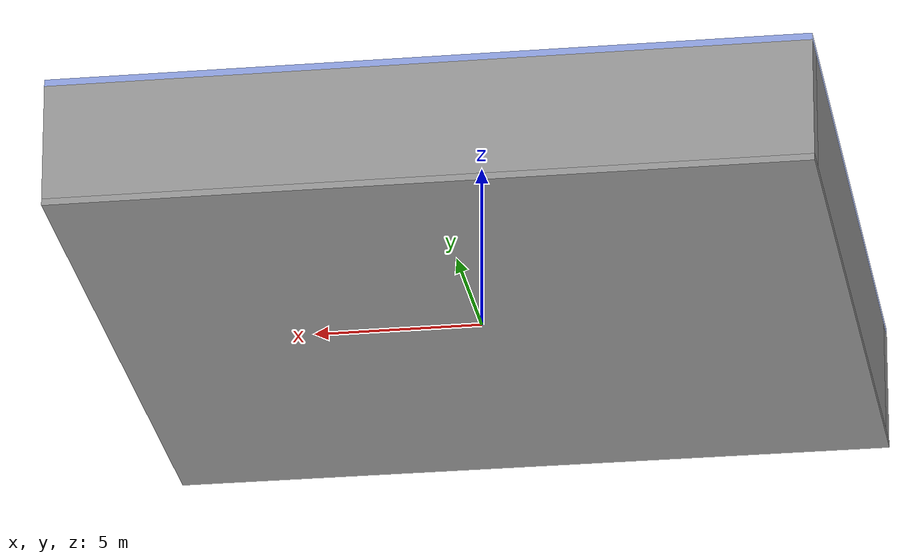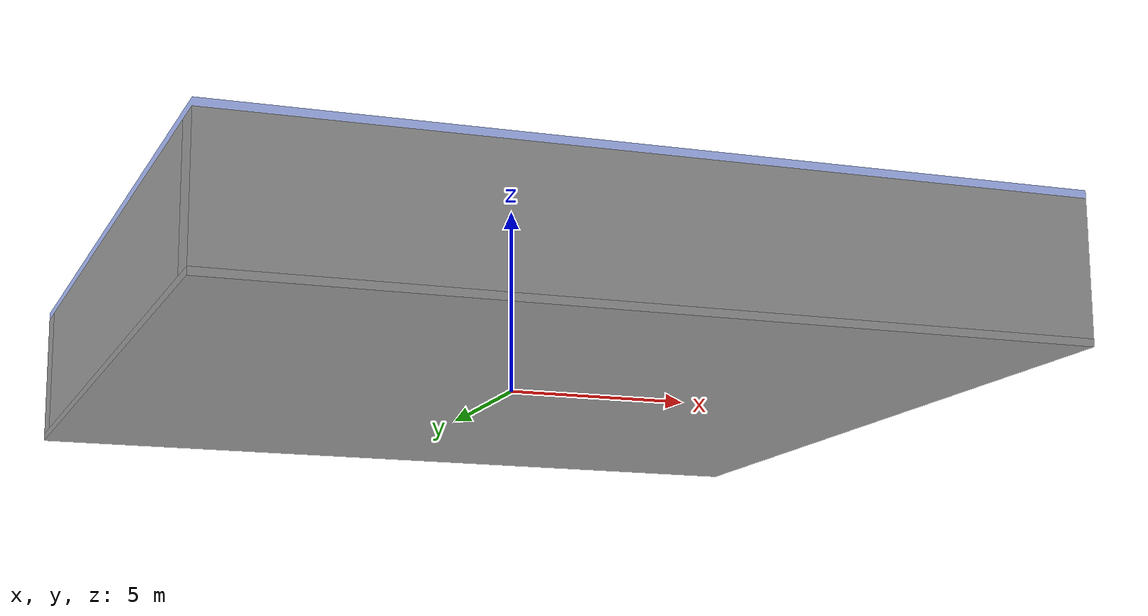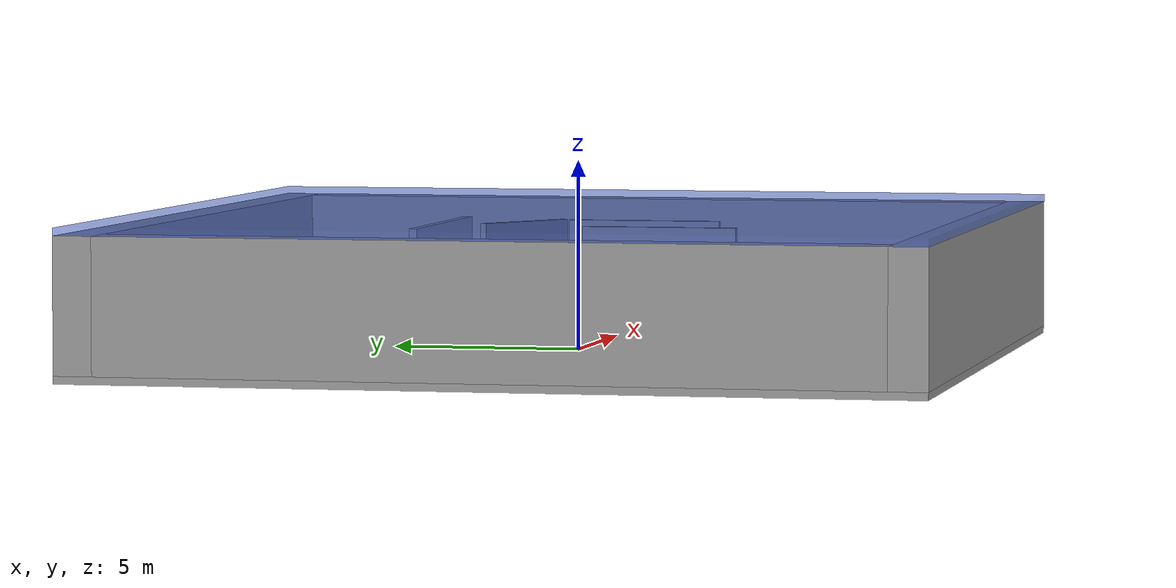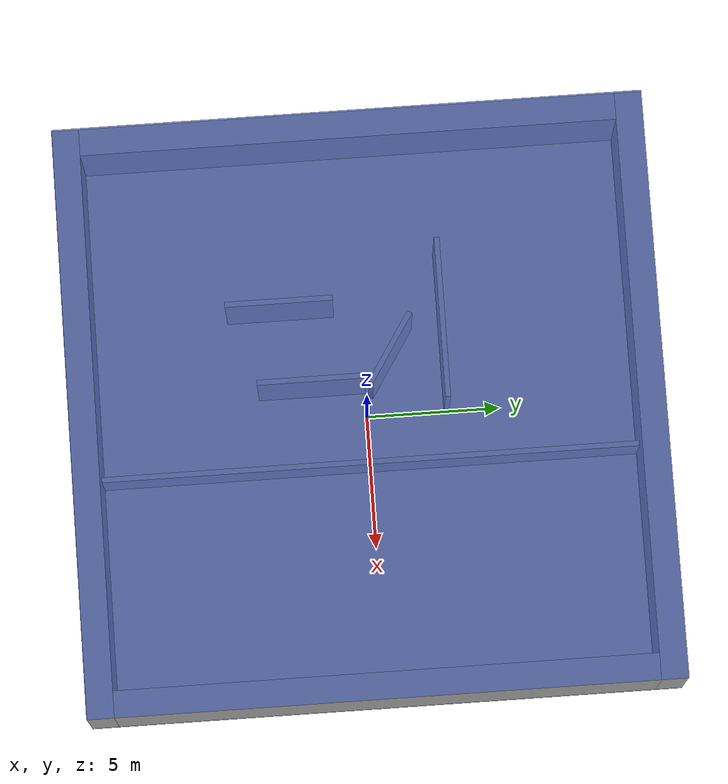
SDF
<?xml version='1.0'?>
<sdf version='1.4'>
  <model name='occupancy_grid'>
    <link name='Ceiling'>
      <collision name='Ceiling_Collision'>
        <geometry>
          <box>
            <size>22 22 0.2</size>
          </box>
        </geometry>
        <pose>0 0 0.1 0 0 0</pose>
      </collision>
      <visual name='Ceiling_Visual'>
        <pose>0 0 0.1 0 0 0</pose>
        <geometry>
          <box>
            <size>22 22 0.2</size>
          </box>
        </geometry>
        <material>
          <script>
            <uri>file://media/materials/scripts/gazebo.material</uri>
            <name>Gazebo/BlueTransparent</name>
          </script>
        </material>
      </visual>
      <velocity_decay>
        <linear>0</linear>
        <angular>0</angular>
      </velocity_decay>
      <pose>0 0 3.5 0 0 0</pose>
    </link>
    <link name='Floor'>
      <collision name='Floor_Collision'>
        <geometry>
          <box>
            <size>22 22 0.2</size>
          </box>
        </geometry>
        <pose>0 0 0.1 0 0 0</pose>
      </collision>
      <visual name='Floor_Visual'>
        <pose>0 0 0.1 0 0 0</pose>
        <geometry>
          <box>
            <size>22 22 0.2</size>
          </box>
        </geometry>
        <material>
          <script>
            <uri>file://media/materials/scripts/gazebo.material</uri>
            <name>Gazebo/Grey</name>
          </script>
        </material>
      </visual>
      <velocity_decay>
        <linear>0</linear>
        <angular>0</angular>
      </velocity_decay>
      <pose>0 0 -0.2 0 0 0</pose>
    </link>
    <link name='Wall_1'>
      <collision name='Wall_1_Collision'>
        <geometry>
          <box>
            <size>20 1 3.5</size>
          </box>
        </geometry>
        <pose>0 0 1.75 0 0 0</pose>
      </collision>
      <visual name='Wall_1_Visual'>
        <pose>0 0 1.75 0 0 0</pose>
        <geometry>
          <box>
            <size>20 1 3.5</size>
          </box>
        </geometry>
        <material>
          <script>
            <uri>file://media/materials/scripts/gazebo.material</uri>
            <name>Gazebo/Grey</name>
          </script>
        </material>
      </visual>
      <velocity_decay>
        <linear>0</linear>
        <angular>0</angular>
      </velocity_decay>
      <pose>-10.5 0 0 0 0 -1.5708</pose>
    </link>
    <link name='Wall_2'>
      <collision name='Wall_2_Collision'>
        <geometry>
          <box>
            <size>22 1 3.5</size>
          </box>
        </geometry>
        <pose>0 0 1.75 0 0 0</pose>
      </collision>
      <visual name='Wall_2_Visual'>
        <pose>0 0 1.75 0 0 0</pose>
        <geometry>
          <box>
            <size>22 1 3.5</size>
          </box>
        </geometry>
        <material>
          <script>
            <uri>file://media/materials/scripts/gazebo.material</uri>
            <name>Gazebo/Grey</name>
          </script>
        </material>
      </visual>
      <velocity_decay>
        <linear>0</linear>
        <angular>0</angular>
      </velocity_decay>
      <pose>0 -10.5 0 0 0 0</pose>
    </link>
    <link name='Wall_3'>
      <collision name='Wall_3_Collision'>
        <geometry>
          <box>
            <size>20 1 3.5</size>
          </box>
        </geometry>
        <pose>0 0 1.75 0 0 0</pose>
      </collision>
      <visual name='Wall_3_Visual'>
        <pose>0 0 1.75 0 0 0</pose>
        <geometry>
          <box>
            <size>20 1 3.5</size>
          </box>
        </geometry>
        <material>
          <script>
            <uri>file://media/materials/scripts/gazebo.material</uri>
            <name>Gazebo/Grey</name>
          </script>
        </material>
      </visual>
      <velocity_decay>
        <linear>0</linear>
        <angular>0</angular>
      </velocity_decay>
      <pose>10.5 0 0 0 0 1.5708</pose>
    </link>
    <link name='Wall_4'>
      <collision name='Wall_4_Collision'>
        <geometry>
          <box>
            <size>22 1 3.5</size>
          </box>
        </geometry>
        <pose>0 0 1.75 0 0 0</pose>
      </collision>
      <visual name='Wall_4_Visual'>
        <pose>0 0 1.75 0 0 0</pose>
        <geometry>
          <box>
            <size>22 1 3.5</size>
          </box>
        </geometry>
        <material>
          <script>
            <uri>file://media/materials/scripts/gazebo.material</uri>
            <name>Gazebo/Grey</name>
          </script>
        </material>
      </visual>
      <velocity_decay>
        <linear>0</linear>
        <angular>0</angular>
      </velocity_decay>
      <pose>0 10.5 0 0 0 0</pose>
    </link>
    <link name='Wall_5'>
      <collision name='Wall_5_Collision'>
        <geometry>
          <box>
            <size>0.2 20 2</size>
          </box>
        </geometry>
        <pose>0 0 1 0 0 0</pose>
      </collision>
      <visual name='Wall_5_Visual'>
        <pose>0 0 1 0 0 0</pose>
        <geometry>
          <box>
            <size>0.2 20 2</size>
          </box>
        </geometry>
        <material>
          <script>
            <uri>file://media/materials/scripts/gazebo.material</uri>
            <name>Gazebo/Grey</name>
          </script>
        </material>
      </visual>
      <velocity_decay>
        <linear>0</linear>
        <angular>0</angular>
      </velocity_decay>
      <pose>2 0 0 0 0 0</pose>
    </link>
    <link name='Wall_6'>
      <collision name='Wall_6_Collision'>
        <geometry>
          <box>
            <size>0.2 3 3.5</size>
          </box>
        </geometry>
        <pose>0 0 1.75 0 0 0</pose>
      </collision>
      <visual name='Wall_6_Visual'>
        <pose>0 0 1.75 0 0 0</pose>
        <geometry>
          <box>
            <size>0.2 3 3.5</size>
          </box>
        </geometry>
        <material>
          <script>
            <uri>file://media/materials/scripts/gazebo.material</uri>
            <name>Gazebo/Grey</name>
          </script>
        </material>
      </visual>
      <velocity_decay>
        <linear>0</linear>
        <angular>0</angular>
      </velocity_decay>
      <pose>-2 1 0 0 0 1</pose>
    </link>
    <link name='Wall_7'>
      <collision name='Wall_7_Collision'>
        <geometry>
          <box>
            <size>0.2 4 3.5</size>
          </box>
        </geometry>
        <pose>0 0 1.75 0 0 0</pose>
      </collision>
      <visual name='Wall_7_Visual'>
        <pose>0 0 1.75 0 0 0</pose>
        <geometry>
          <box>
            <size>0.2 4 3.5</size>
          </box>
        </geometry>
        <material>
          <script>
            <uri>file://media/materials/scripts/gazebo.material</uri>
            <name>Gazebo/Grey</name>
          </script>
        </material>
      </visual>
      <velocity_decay>
        <linear>0</linear>
        <angular>0</angular>
      </velocity_decay>
      <pose>-4 -3 0 0 0 0</pose>
    </link>
    <link name='Wall_8'>
      <collision name='Wall_8_Collision'>
        <geometry>
          <box>
            <size>0.2 6 3.5</size>
          </box>
        </geometry>
        <pose>0 0 1.75 0 0 0</pose>
      </collision>
      <visual name='Wall_8_Visual'>
        <pose>0 0 1.75 0 0 0</pose>
        <geometry>
          <box>
            <size>0.2 6 3.5</size>
          </box>
        </geometry>
        <material>
          <script>
            <uri>file://media/materials/scripts/gazebo.material</uri>
            <name>Gazebo/Grey</name>
          </script>
        </material>
      </visual>
      <velocity_decay>
        <linear>0</linear>
        <angular>0</angular>
      </velocity_decay>
      <pose>-3 3 0 0 0 1.57</pose>
    </link>
    <link name='Wall_9'>
      <collision name='Wall_9_Collision'>
        <geometry>
          <box>
            <size>0.2 4 3.5</size>
          </box>
        </geometry>
        <pose>0 0 1.75 0 0 0</pose>
      </collision>
      <visual name='Wall_9_Visual'>
        <pose>0 0 1.75 0 0 0</pose>
        <geometry>
          <box>
            <size>0.2 4 3.5</size>
          </box>
        </geometry>
        <material>
          <script>
            <uri>file://media/materials/scripts/gazebo.material</uri>
            <name>Gazebo/Grey</name>
          </script>
        </material>
      </visual>
      <velocity_decay>
        <linear>0</linear>
        <angular>0</angular>
      </velocity_decay>
      <pose>-1 -2 0 0 0 0</pose>
    </link>
    <static>1</static>
  </model>
</sdf>
